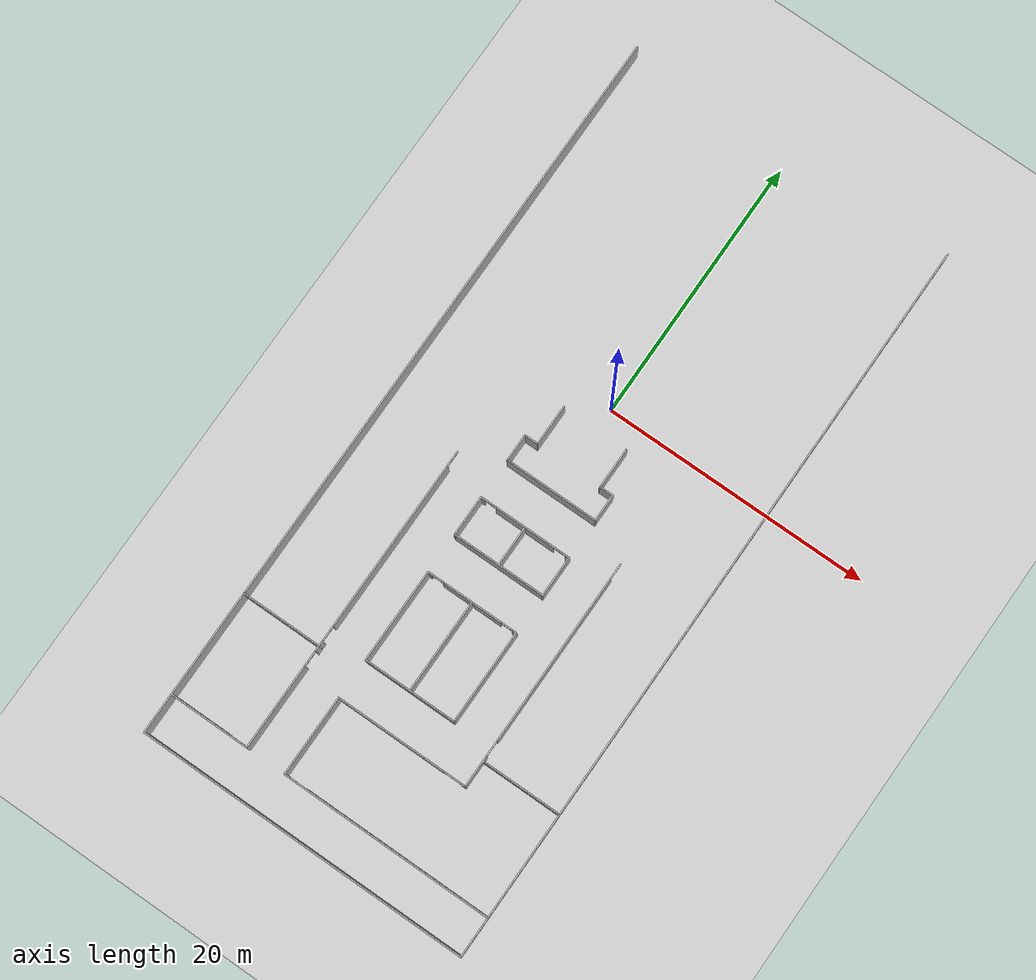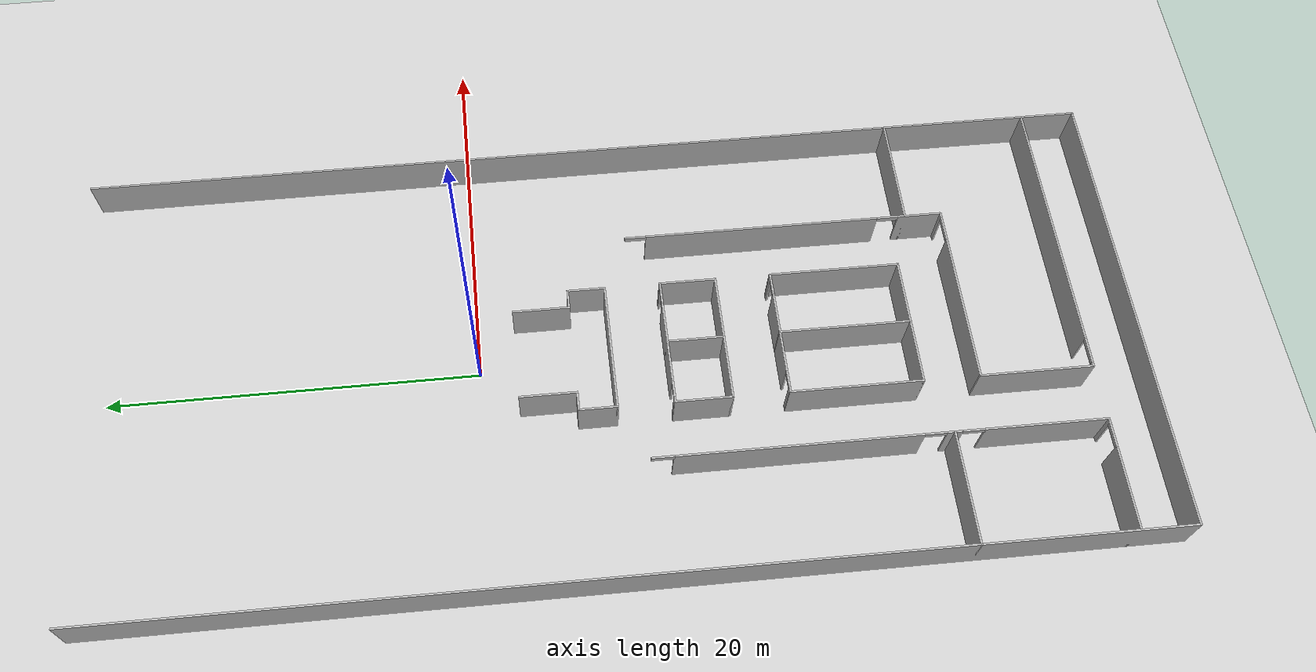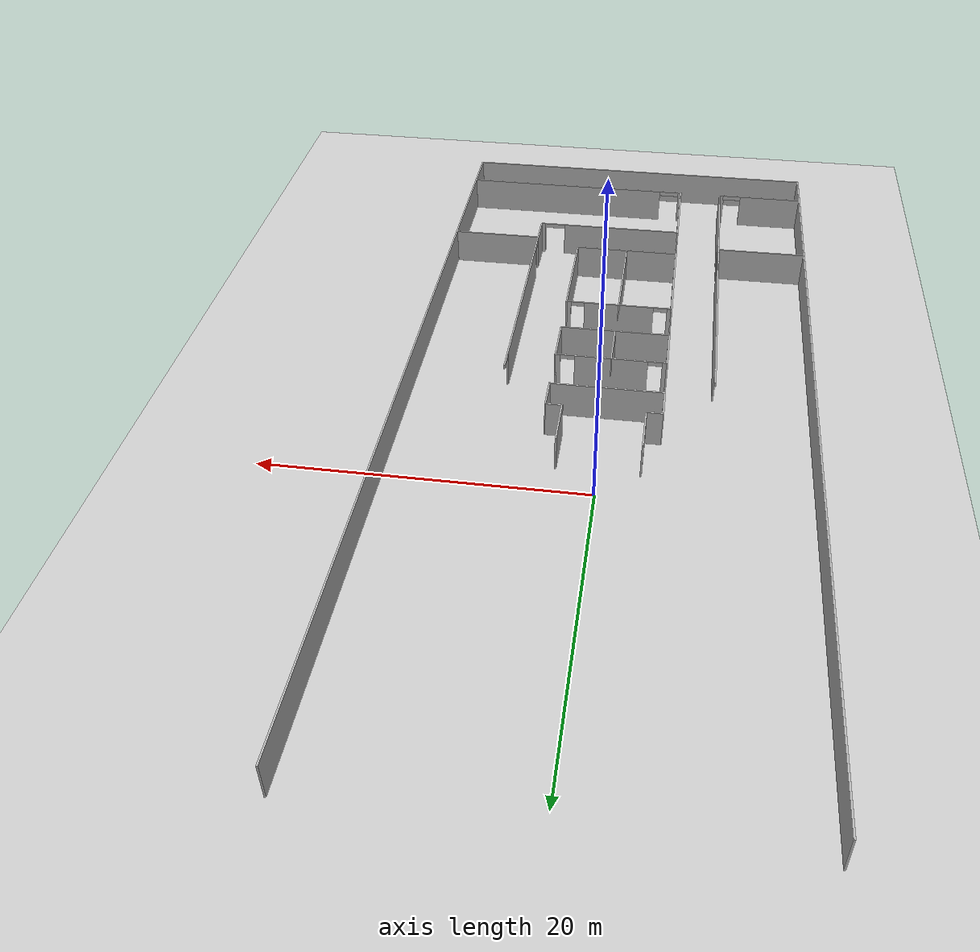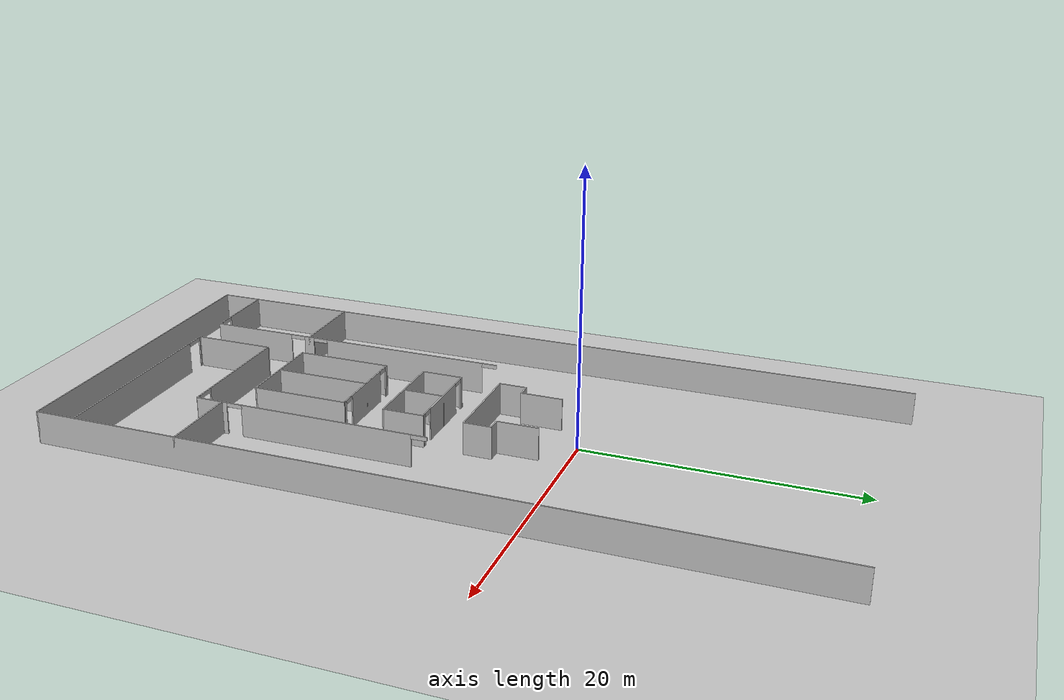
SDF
<sdf version="1.6">
 <world name="world">
  <include><uri>model://sun</uri></include>
  <include><uri>model://ground_plane</uri><pose>0 0 -0.1 0 -0 0</pose></include>
  <model name="ext_wall1">
   <allow_auto_disable>false</allow_auto_disable>
   <static>true</static>
   <pose>0 -35 1.2 0 0 0</pose>
   <static>true</static>
   <link name="ext_wall1_link">
    <collision name="ext_wall1_collision"><geometry><box><size>25.1 0.1 2.4</size></box></geometry></collision>
    <visual name="ext_wall1_visual"><geometry><box><size>25.1 0.1 2.4</size></box></geometry></visual>
   </link>
  </model>
  <model name="ext_wall3">
   <allow_auto_disable>false</allow_auto_disable>
   <static>true</static>
   <pose>12.5 -7 1.2 0 0 0</pose>
   <static>true</static>
   <link name="ext_wall3_link">
    <collision name="ext_wall3_collision"><geometry><box><size>0.1 56.1 2.4</size></box></geometry></collision>
    <visual name="ext_wall3_visual"><geometry><box><size>0.1 56.1 2.4</size></box></geometry></visual>
   </link>
  </model>
  <model name="ext_wall4">
   <allow_auto_disable>false</allow_auto_disable>
   <static>true</static>
   <pose>-12.5 -7 1.2 0 0 0</pose>
   <static>true</static>
   <link name="ext_wall4_link">
    <collision name="ext_wall4_collision"><geometry><box><size>0.1 56.1 2.4</size></box></geometry></collision>
    <visual name="ext_wall4_visual"><geometry><box><size>0.1 56.1 2.4</size></box></geometry></visual>
   </link>
  </model>
  <model name="wall8">
   <allow_auto_disable>false</allow_auto_disable>
   <static>true</static>
   <pose>2.5 -3.5 1.2 0 0 0</pose>
   <static>true</static>
   <link name="wall8_link">
    <collision name="wall8_collision"><geometry><box><size>0.1 3.1 2.4</size></box></geometry></collision>
    <visual name="wall8_visual"><geometry><box><size>0.1 3.1 2.4</size></box></geometry></visual>
   </link>
  </model>
  <model name="wall9">
   <allow_auto_disable>false</allow_auto_disable>
   <static>true</static>
   <pose>-2.5 -3.5 1.2 0 0 0</pose>
   <static>true</static>
   <link name="wall9_link">
    <collision name="wall9_collision"><geometry><box><size>0.1 3.1 2.4</size></box></geometry></collision>
    <visual name="wall9_visual"><geometry><box><size>0.1 3.1 2.4</size></box></geometry></visual>
   </link>
  </model>
  <model name="wall10">
   <allow_auto_disable>false</allow_auto_disable>
   <static>true</static>
   <pose>3 -5 1.2 0 0 0</pose>
   <static>true</static>
   <link name="wall10_link">
    <collision name="wall10_collision"><geometry><box><size>1 0.1 2.4</size></box></geometry></collision>
    <visual name="wall10_visual"><geometry><box><size>1 0.1 2.4</size></box></geometry></visual>
   </link>
  </model>
  <model name="wall11">
   <allow_auto_disable>false</allow_auto_disable>
   <static>true</static>
   <pose>-3 -5 1.2 0 0 0</pose>
   <static>true</static>
   <link name="wall11_link">
    <collision name="wall11_collision"><geometry><box><size>1 0.1 2.4</size></box></geometry></collision>
    <visual name="wall11_visual"><geometry><box><size>1 0.1 2.4</size></box></geometry></visual>
   </link>
  </model>
  <model name="wall12">
   <allow_auto_disable>false</allow_auto_disable>
   <static>true</static>
   <pose>3.5 -6 1.2 0 0 0</pose>
   <static>true</static>
   <link name="wall12_link">
    <collision name="wall12_collision"><geometry><box><size>0.1 2.1 2.4</size></box></geometry></collision>
    <visual name="wall12_visual"><geometry><box><size>0.1 2.1 2.4</size></box></geometry></visual>
   </link>
  </model>
  <model name="wall13">
   <allow_auto_disable>false</allow_auto_disable>
   <static>true</static>
   <pose>-3.5 -6 1.2 0 0 0</pose>
   <static>true</static>
   <link name="wall13_link">
    <collision name="wall13_collision"><geometry><box><size>0.1 2.1 2.4</size></box></geometry></collision>
    <visual name="wall13_visual"><geometry><box><size>0.1 2.1 2.4</size></box></geometry></visual>
   </link>
  </model>
  <model name="wall14">
   <allow_auto_disable>false</allow_auto_disable>
   <static>true</static>
   <pose>0 -7 1.2 0 0 0</pose>
   <static>true</static>
   <link name="wall14_link">
    <collision name="wall14_collision"><geometry><box><size>7.1 0.1 2.4</size></box></geometry></collision>
    <visual name="wall14_visual"><geometry><box><size>7.1 0.1 2.4</size></box></geometry></visual>
   </link>
  </model>
  <model name="wall16">
   <allow_auto_disable>false</allow_auto_disable>
   <static>true</static>
   <pose>0 -10 1.2 0 0 0</pose>
   <static>true</static>
   <link name="wall16_link">
    <collision name="wall16_collision"><geometry><box><size>4.6 0.1 2.4</size></box></geometry></collision>
    <visual name="wall16_visual"><geometry><box><size>4.6 0.1 2.4</size></box></geometry></visual>
   </link>
  </model>
  <model name="wall17">
   <allow_auto_disable>false</allow_auto_disable>
   <static>true</static>
   <pose>3.35 -10 1.2 0 0 0</pose>
   <static>true</static>
   <link name="wall17_link">
    <collision name="wall17_collision"><geometry><box><size>0.3 0.1 2.4</size></box></geometry></collision>
    <visual name="wall17_visual"><geometry><box><size>0.3 0.1 2.4</size></box></geometry></visual>
   </link>
  </model>
  <model name="wall18">
   <allow_auto_disable>false</allow_auto_disable>
   <static>true</static>
   <pose>-3.35 -10 1.2 0 0 0</pose>
   <static>true</static>
   <link name="wall18_link">
    <collision name="wall18_collision"><geometry><box><size>0.3 0.1 2.4</size></box></geometry></collision>
    <visual name="wall18_visual"><geometry><box><size>0.3 0.1 2.4</size></box></geometry></visual>
   </link>
  </model>
  <model name="wall19">
   <allow_auto_disable>false</allow_auto_disable>
   <static>true</static>
   <pose>0 -11.5 1.2 0 0 0</pose>
   <static>true</static>
   <link name="wall19_link">
    <collision name="wall19_collision"><geometry><box><size>0.1 3.1 2.4</size></box></geometry></collision>
    <visual name="wall19_visual"><geometry><box><size>0.1 3.1 2.4</size></box></geometry></visual>
   </link>
  </model>
  <model name="wall20">
   <allow_auto_disable>false</allow_auto_disable>
   <static>true</static>
   <pose>3.5 -11.5 1.2 0 0 0</pose>
   <static>true</static>
   <link name="wall20_link">
    <collision name="wall20_collision"><geometry><box><size>0.1 3.1 2.4</size></box></geometry></collision>
    <visual name="wall20_visual"><geometry><box><size>0.1 3.1 2.4</size></box></geometry></visual>
   </link>
  </model>
  <model name="wall21">
   <allow_auto_disable>false</allow_auto_disable>
   <static>true</static>
   <pose>-3.5 -11.5 1.2 0 0 0</pose>
   <static>true</static>
   <link name="wall21_link">
    <collision name="wall21_collision"><geometry><box><size>0.1 3.1 2.4</size></box></geometry></collision>
    <visual name="wall21_visual"><geometry><box><size>0.1 3.1 2.4</size></box></geometry></visual>
   </link>
  </model>
  <model name="wall22">
   <allow_auto_disable>false</allow_auto_disable>
   <static>true</static>
   <pose>0 -13 1.2 0 0 0</pose>
   <static>true</static>
   <link name="wall22_link">
    <collision name="wall22_collision"><geometry><box><size>7.1 0.1 2.4</size></box></geometry></collision>
    <visual name="wall22_visual"><geometry><box><size>7.1 0.1 2.4</size></box></geometry></visual>
   </link>
  </model>
  <model name="wall23">
   <allow_auto_disable>false</allow_auto_disable>
   <static>true</static>
   <pose>0 -16 1.2 0 0 0</pose>
   <static>true</static>
   <link name="wall23_link">
    <collision name="wall23_collision"><geometry><box><size>4.6 0.1 2.4</size></box></geometry></collision>
    <visual name="wall23_visual"><geometry><box><size>4.6 0.1 2.4</size></box></geometry></visual>
   </link>
  </model>
  <model name="wall24">
   <allow_auto_disable>false</allow_auto_disable>
   <static>true</static>
   <pose>3.35 -16 1.2 0 0 0</pose>
   <static>true</static>
   <link name="wall24_link">
    <collision name="wall24_collision"><geometry><box><size>0.3 0.1 2.4</size></box></geometry></collision>
    <visual name="wall24_visual"><geometry><box><size>0.3 0.1 2.4</size></box></geometry></visual>
   </link>
  </model>
  <model name="wall25">
   <allow_auto_disable>false</allow_auto_disable>
   <static>true</static>
   <pose>-3.35 -16 1.2 0 0 0</pose>
   <static>true</static>
   <link name="wall25_link">
    <collision name="wall25_collision"><geometry><box><size>0.3 0.1 2.4</size></box></geometry></collision>
    <visual name="wall25_visual"><geometry><box><size>0.3 0.1 2.4</size></box></geometry></visual>
   </link>
  </model>
  <model name="wall26">
   <allow_auto_disable>false</allow_auto_disable>
   <static>true</static>
   <pose>0 -19.5 1.2 0 0 0</pose>
   <static>true</static>
   <link name="wall26_link">
    <collision name="wall26_collision"><geometry><box><size>0.1 7.1 2.4</size></box></geometry></collision>
    <visual name="wall26_visual"><geometry><box><size>0.1 7.1 2.4</size></box></geometry></visual>
   </link>
  </model>
  <model name="wall27">
   <allow_auto_disable>false</allow_auto_disable>
   <static>true</static>
   <pose>3.5 -19.5 1.2 0 0 0</pose>
   <static>true</static>
   <link name="wall27_link">
    <collision name="wall27_collision"><geometry><box><size>0.1 7.1 2.4</size></box></geometry></collision>
    <visual name="wall27_visual"><geometry><box><size>0.1 7.1 2.4</size></box></geometry></visual>
   </link>
  </model>
  <model name="wall28">
   <allow_auto_disable>false</allow_auto_disable>
   <static>true</static>
   <pose>-3.5 -19.5 1.2 0 0 0</pose>
   <static>true</static>
   <link name="wall28_link">
    <collision name="wall28_collision"><geometry><box><size>0.1 7.1 2.4</size></box></geometry></collision>
    <visual name="wall28_visual"><geometry><box><size>0.1 7.1 2.4</size></box></geometry></visual>
   </link>
  </model>
  <model name="wall29">
   <allow_auto_disable>false</allow_auto_disable>
   <static>true</static>
   <pose>0 -23 1.2 0 0 0</pose>
   <static>true</static>
   <link name="wall29_link">
    <collision name="wall29_collision"><geometry><box><size>7.1 0.1 2.4</size></box></geometry></collision>
    <visual name="wall29_visual"><geometry><box><size>7.1 0.1 2.4</size></box></geometry></visual>
   </link>
  </model>
  <model name="wall59">
   <allow_auto_disable>false</allow_auto_disable>
   <static>true</static>
   <pose>-6.5 -16 1.2 0 0 0</pose>
   <static>true</static>
   <link name="wall59_link">
    <collision name="wall59_collision"><geometry><box><size>0.1 12.9 2.4</size></box></geometry></collision>
    <visual name="wall59_visual"><geometry><box><size>0.1 12.9 2.4</size></box></geometry></visual>
   </link>
  </model>
  <model name="wall60">
   <allow_auto_disable>false</allow_auto_disable>
   <static>true</static>
   <pose>6.5 -16 1.2 0 0 0</pose>
   <static>true</static>
   <link name="wall60_link">
    <collision name="wall60_collision"><geometry><box><size>0.1 12.9 2.4</size></box></geometry></collision>
    <visual name="wall60_visual"><geometry><box><size>0.1 12.9 2.4</size></box></geometry></visual>
   </link>
  </model>
  <model name="wall61">
   <allow_auto_disable>false</allow_auto_disable>
   <static>true</static>
   <pose>-6.5 -24 1.2 0 0 0</pose>
   <static>true</static>
   <link name="wall61_link">
    <collision name="wall61_collision"><geometry><box><size>0.1 0.8 2.4</size></box></geometry></collision>
    <visual name="wall61_visual"><geometry><box><size>0.1 0.8 2.4</size></box></geometry></visual>
   </link>
  </model>
  <model name="wall62">
   <allow_auto_disable>false</allow_auto_disable>
   <static>true</static>
   <pose>-9.5 -24 1.2 0 0 0</pose>
   <static>true</static>
   <link name="wall62_link">
    <collision name="wall62_collision"><geometry><box><size>6.1 0.1 2.4</size></box></geometry></collision>
    <visual name="wall62_visual"><geometry><box><size>6.1 0.1 2.4</size></box></geometry></visual>
   </link>
  </model>
  <model name="wall63">
   <allow_auto_disable>false</allow_auto_disable>
   <static>true</static>
   <pose>9.5 -24 1.2 0 0 0</pose>
   <static>true</static>
   <link name="wall63_link">
    <collision name="wall63_collision"><geometry><box><size>6.1 0.1 2.4</size></box></geometry></collision>
    <visual name="wall63_visual"><geometry><box><size>6.1 0.1 2.4</size></box></geometry></visual>
   </link>
  </model>
  <model name="wall64">
   <allow_auto_disable>false</allow_auto_disable>
   <static>true</static>
   <pose>-6.5 -28.8 1.2 0 0 0</pose>
   <static>true</static>
   <link name="wall64_link">
    <collision name="wall64_collision"><geometry><box><size>0.1 6.5 2.4</size></box></geometry></collision>
    <visual name="wall64_visual"><geometry><box><size>0.1 6.5 2.4</size></box></geometry></visual>
   </link>
  </model>
  <model name="wall65">
   <allow_auto_disable>false</allow_auto_disable>
   <static>true</static>
   <pose>-6.65 -32 1.2 0 0 0</pose>
   <static>true</static>
   <link name="wall65_link">
    <collision name="wall65_collision"><geometry><box><size>0.3 0.1 2.4</size></box></geometry></collision>
    <visual name="wall65_visual"><geometry><box><size>0.3 0.1 2.4</size></box></geometry></visual>
   </link>
  </model>
  <model name="wall66">
   <allow_auto_disable>false</allow_auto_disable>
   <static>true</static>
   <pose>-10.3 -32 1.2 0 0 0</pose>
   <static>true</static>
   <link name="wall66_link">
    <collision name="wall66_collision"><geometry><box><size>4.5 0.1 2.4</size></box></geometry></collision>
    <visual name="wall66_visual"><geometry><box><size>4.5 0.1 2.4</size></box></geometry></visual>
   </link>
  </model>
  <model name="wall67">
   <allow_auto_disable>false</allow_auto_disable>
   <static>true</static>
   <pose>6.5 -24.8 1.2 0 0 0</pose>
   <static>true</static>
   <link name="wall67_link">
    <collision name="wall67_collision"><geometry><box><size>0.1 2.4 2.4</size></box></geometry></collision>
    <visual name="wall67_visual"><geometry><box><size>0.1 2.4 2.4</size></box></geometry></visual>
   </link>
  </model>
  <model name="wall68">
   <allow_auto_disable>false</allow_auto_disable>
   <static>true</static>
   <pose>6.35 -26 1.2 0 0 0</pose>
   <static>true</static>
   <link name="wall68_link">
    <collision name="wall68_collision"><geometry><box><size>0.3 0.1 2.4</size></box></geometry></collision>
    <visual name="wall68_visual"><geometry><box><size>0.3 0.1 2.4</size></box></geometry></visual>
   </link>
  </model>
  <model name="wall69">
   <allow_auto_disable>false</allow_auto_disable>
   <static>true</static>
   <pose>0.65 -26 1.2 0 0 0</pose>
   <static>true</static>
   <link name="wall69_link">
    <collision name="wall69_collision"><geometry><box><size>8.3 0.1 2.4</size></box></geometry></collision>
    <visual name="wall69_visual"><geometry><box><size>8.3 0.1 2.4</size></box></geometry></visual>
   </link>
  </model>
  <model name="wall70">
   <allow_auto_disable>false</allow_auto_disable>
   <static>true</static>
   <pose>-3.5 -29 1.2 0 0 0</pose>
   <static>true</static>
   <link name="wall70_link">
    <collision name="wall70_collision"><geometry><box><size>0.1 6.1 2.4</size></box></geometry></collision>
    <visual name="wall70_visual"><geometry><box><size>0.1 6.1 2.4</size></box></geometry></visual>
   </link>
  </model>
  <model name="wall71">
   <allow_auto_disable>false</allow_auto_disable>
   <static>true</static>
   <pose>-3.4 -32 1.2 0 0 0</pose>
   <static>true</static>
   <link name="wall71_link">
    <collision name="wall71_collision"><geometry><box><size>0.2 0.1 2.4</size></box></geometry></collision>
    <visual name="wall71_visual"><geometry><box><size>0.2 0.1 2.4</size></box></geometry></visual>
   </link>
  </model>
  <model name="wall72">
   <allow_auto_disable>false</allow_auto_disable>
   <static>true</static>
   <pose>5.3 -32 1.2 0 0 0</pose>
   <static>true</static>
   <link name="wall72_link">
    <collision name="wall72_collision"><geometry><box><size>14.4 0.1 2.4</size></box></geometry></collision>
    <visual name="wall72_visual"><geometry><box><size>14.4 0.1 2.4</size></box></geometry></visual>
   </link>
  </model>
  <model name="arch3">
   <allow_auto_disable>false</allow_auto_disable>
   <static>true</static>
   <pose>2.75 -10 2.25 0 0 0</pose>
   <static>true</static>
   <link name="arch3_link">
    <collision name="arch3_collision"><geometry><box><size>0.9 0.1 0.3</size></box></geometry></collision>
    <visual name="arch3_visual"><geometry><box><size>0.9 0.1 0.3</size></box></geometry></visual>
   </link>
  </model>
  <model name="arch4">
   <allow_auto_disable>false</allow_auto_disable>
   <static>true</static>
   <pose>-2.75 -10 2.25 0 0 0</pose>
   <static>true</static>
   <link name="arch4_link">
    <collision name="arch4_collision"><geometry><box><size>0.9 0.1 0.3</size></box></geometry></collision>
    <visual name="arch4_visual"><geometry><box><size>0.9 0.1 0.3</size></box></geometry></visual>
   </link>
  </model>
  <model name="arch5">
   <allow_auto_disable>false</allow_auto_disable>
   <static>true</static>
   <pose>2.75 -16 2.25 0 0 0</pose>
   <static>true</static>
   <link name="arch5_link">
    <collision name="arch5_collision"><geometry><box><size>0.9 0.1 0.3</size></box></geometry></collision>
    <visual name="arch5_visual"><geometry><box><size>0.9 0.1 0.3</size></box></geometry></visual>
   </link>
  </model>
  <model name="arch6">
   <allow_auto_disable>false</allow_auto_disable>
   <static>true</static>
   <pose>-2.75 -16 2.25 0 0 0</pose>
   <static>true</static>
   <link name="arch6_link">
    <collision name="arch6_collision"><geometry><box><size>0.9 0.1 0.3</size></box></geometry></collision>
    <visual name="arch6_visual"><geometry><box><size>0.9 0.1 0.3</size></box></geometry></visual>
   </link>
  </model>
  <model name="arch15">
   <allow_auto_disable>false</allow_auto_disable>
   <static>true</static>
   <pose>-6.5 -9 2.25 0 0 0</pose>
   <static>true</static>
   <link name="arch15_link">
    <collision name="arch15_collision"><geometry><box><size>0.1 1.2 0.3</size></box></geometry></collision>
    <visual name="arch15_visual"><geometry><box><size>0.1 1.2 0.3</size></box></geometry></visual>
   </link>
  </model>
  <model name="arch16">
   <allow_auto_disable>false</allow_auto_disable>
   <static>true</static>
   <pose>6.5 -9 2.25 0 0 0</pose>
   <static>true</static>
   <link name="arch16_link">
    <collision name="arch16_collision"><geometry><box><size>0.1 1.2 0.3</size></box></geometry></collision>
    <visual name="arch16_visual"><geometry><box><size>0.1 1.2 0.3</size></box></geometry></visual>
   </link>
  </model>
  <model name="arch17">
   <allow_auto_disable>false</allow_auto_disable>
   <static>true</static>
   <pose>-6.5 -23 2.25 0 0 0</pose>
   <static>true</static>
   <link name="arch17_link">
    <collision name="arch17_collision"><geometry><box><size>0.1 1.2 0.3</size></box></geometry></collision>
    <visual name="arch17_visual"><geometry><box><size>0.1 1.2 0.3</size></box></geometry></visual>
   </link>
  </model>
  <model name="arch18">
   <allow_auto_disable>false</allow_auto_disable>
   <static>true</static>
   <pose>6.5 -23 2.25 0 0 0</pose>
   <static>true</static>
   <link name="arch18_link">
    <collision name="arch18_collision"><geometry><box><size>0.1 1.2 0.3</size></box></geometry></collision>
    <visual name="arch18_visual"><geometry><box><size>0.1 1.2 0.3</size></box></geometry></visual>
   </link>
  </model>
  <model name="arch19">
   <allow_auto_disable>false</allow_auto_disable>
   <static>true</static>
   <pose>-6.5 -25 2.25 0 0 0</pose>
   <static>true</static>
   <link name="arch19_link">
    <collision name="arch19_collision"><geometry><box><size>0.1 1.2 0.3</size></box></geometry></collision>
    <visual name="arch19_visual"><geometry><box><size>0.1 1.2 0.3</size></box></geometry></visual>
   </link>
  </model>
  <model name="arch20">
   <allow_auto_disable>false</allow_auto_disable>
   <static>true</static>
   <pose>-7.4 -32 2.25 0 0 0</pose>
   <static>true</static>
   <link name="arch20_link">
    <collision name="arch20_collision"><geometry><box><size>1.3 0.1 0.3</size></box></geometry></collision>
    <visual name="arch20_visual"><geometry><box><size>1.3 0.1 0.3</size></box></geometry></visual>
   </link>
  </model>
  <model name="arch21">
   <allow_auto_disable>false</allow_auto_disable>
   <static>true</static>
   <pose>5.5 -26 2.25 0 0 0</pose>
   <static>true</static>
   <link name="arch21_link">
    <collision name="arch21_collision"><geometry><box><size>1.4 0.1 0.3</size></box></geometry></collision>
    <visual name="arch21_visual"><geometry><box><size>1.4 0.1 0.3</size></box></geometry></visual>
   </link>
  </model>
  <model name="arch22">
   <allow_auto_disable>false</allow_auto_disable>
   <static>true</static>
   <pose>-2.6 -32 2.25 0 0 0</pose>
   <static>true</static>
   <link name="arch22_link">
    <collision name="arch22_collision"><geometry><box><size>1.4 0.1 0.3</size></box></geometry></collision>
    <visual name="arch22_visual"><geometry><box><size>1.4 0.1 0.3</size></box></geometry></visual>
   </link>
  </model>
 </world>
</sdf>
